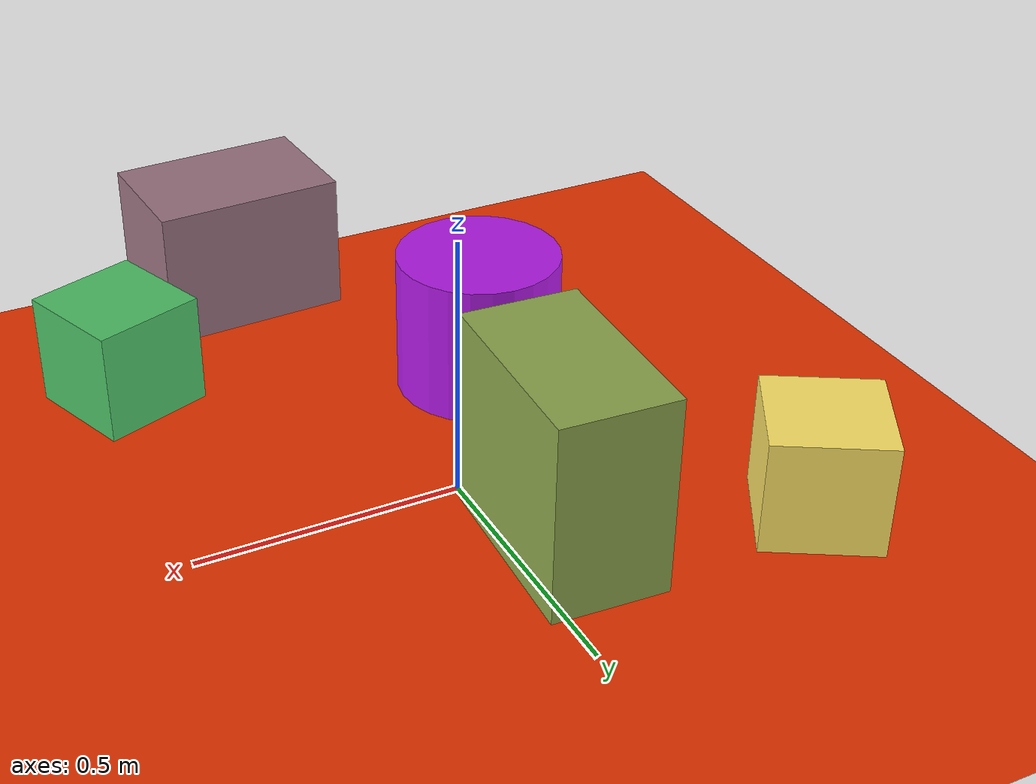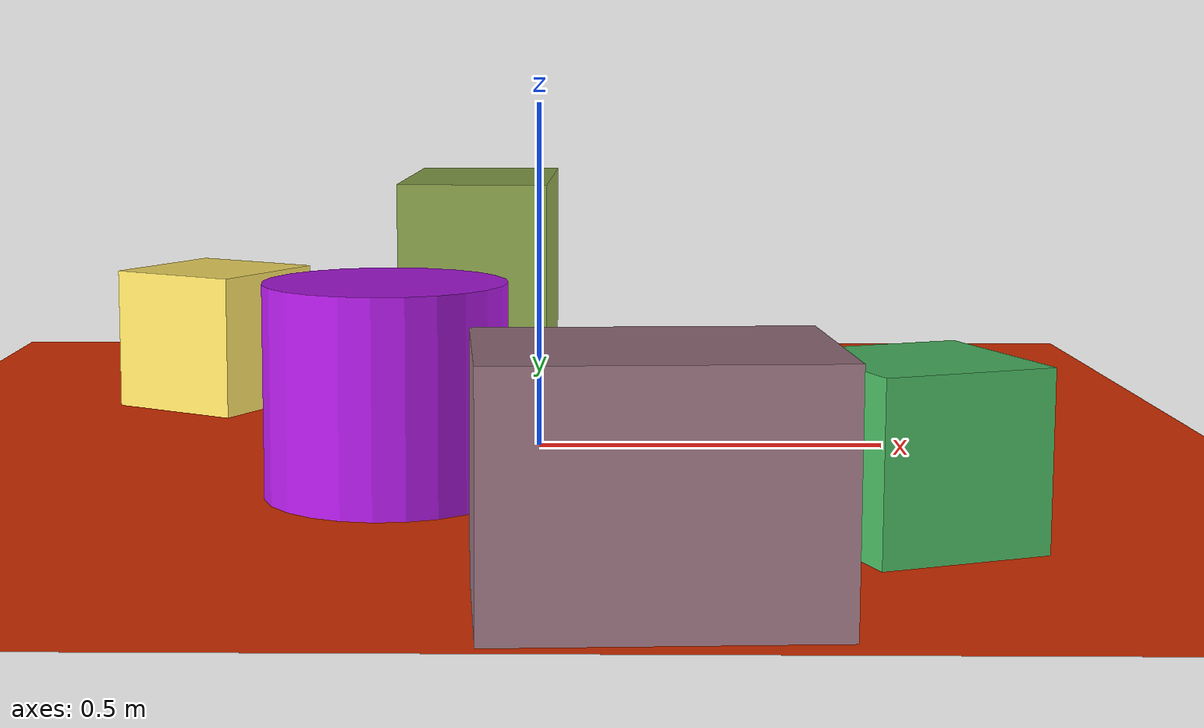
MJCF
<mujoco>
   <asset>
<texture type="skybox" builtin="gradient" rgb1="0.2 0.1 0.0" rgb2="0.8 0.2 0.7" width="256" height="256"/>
<texture name="checker_0" builtin="checker" rgb1="0.4 0.9 0.4" rgb2="0.2 0.6 0.4" width="200" height="200"/>
<texture name="checker_1" builtin="checker" rgb1="0.8 0.8 0.5" rgb2="0.3 0.5 0.1" width="200" height="200"/>
<texture name="flat_2" builtin="flat" rgb1="1.0 0.9 0.4" rgb2="1.0 0.9 0.4"  width="200" height="200"/>
<texture name="flat_3" builtin="flat" rgb1="0.7 0.1 0.9" rgb2="0.7 0.1 0.9"  width="200" height="200"/>
<texture name="gradient_4" builtin="gradient" rgb1="0.6 0.0 0.2" rgb2="0.6 0.9 0.8" width="200" height="200"/><material name="checker_0_mat" reflectance="0" texrepeat="3 3" texture="checker_0" texuniform="false" />
<material name="checker_1_mat" reflectance="0" texrepeat="8 8" texture="checker_1" texuniform="false" />
<material name="flat_2_mat" reflectance="0" texture="flat_2" texuniform="true"/>
<material name="flat_3_mat" reflectance="0" texture="flat_3" texuniform="true"/>
<material name="gradient_4_mat" reflectance="0" texture="gradient_4" texuniform="true"/>
   </asset>

   <worldbody>
      <light diffuse=".9 .9 .9" pos="0 0 3" dir="0 0 -1"/>
     <geom type="plane" size="1 1 0.1" rgba="0.9 0.2 0.0 1"/>
<geom type="box" pos="0.45 -0.56 0.11" size="0.11 0.11 0.11" material="checker_0_mat" euler="0 0 20" />
<geom type="box" pos="-0.09 0.22 0.19" size="0.19 0.11 0.19" material="checker_1_mat" euler="0 0 87" />
<geom type="box" pos="-0.53 0.35 0.11" size="0.11 0.11 0.11" material="flat_2_mat" euler="0 0 60" />
<geom type="cylinder" pos="-0.2 -0.32 0.14" size="0.16 0.14 0.14" material="flat_3_mat" euler="0 0 88" />
<geom type="box" pos="0.12 -0.85 0.14" size="0.19 0.13 0.14" material="gradient_4_mat" euler="0 0 3" /><camera euler="60 0 180" fovy="60" name="camera1" pos="-0.2 -1.5 1"></camera>   </worldbody>
</mujoco>
